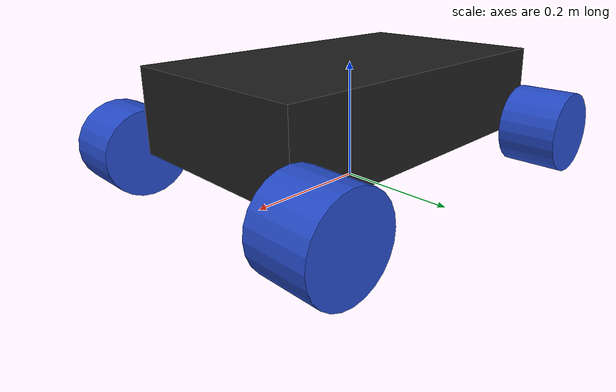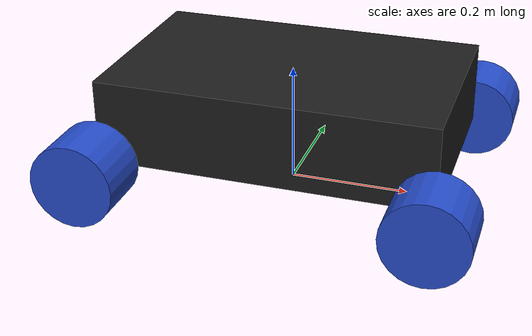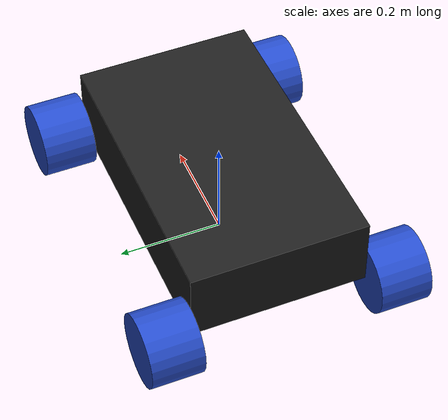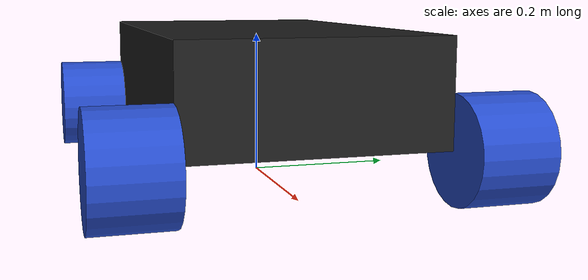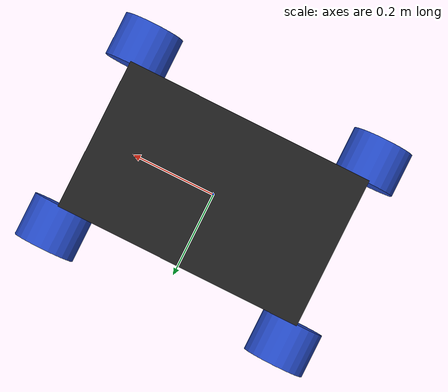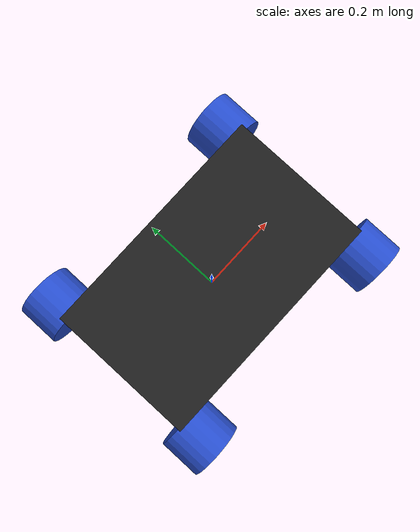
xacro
<?xml version="1.0" ?>
<robot name="track_creator" xmlns:xacro="http://www.ros.org/wiki/xacro">

<xacro:property name="cameraSize" value="0.05"/>
<xacro:property name="cameraMass" value="0.1"/>
<xacro:property name="PI" value="3.1415926535897931"/>

<xacro:property name="base_Size" value="0.1"/>

<xacro:include filename="$(find my_description)/urdf/my.gazebo" />
<xacro:include filename="$(find my_description)/urdf/materials.xacro" />

 <link name="camera_link">
     </link>

 <joint name="camera_joint" type="fixed">
    <axis xyz="0 0 0" />
    <origin xyz="0.3 0.0 0.25" rpy="0 0 0"/>
    <parent link="track_creator__base_link"/>
    <child link="camera_link"/>
  </joint>

<joint name="camera_optical_joint" type="fixed">
    <!-- these values have to be these values otherwise the gazebo camera image
        won't be aligned properly with the frame it is supposedly originating from -->
    <origin xyz="0 0 0" rpy="-1.5708 0 -1.5708"/>
    <parent link="camera_link"/>
    <child link="camera_link_optical"/>
  </joint>

  <link name="camera_link_optical">
  </link>

  <link name="imu_link">
      </link>
      <joint name="imu_joint" type="fixed">
    <axis xyz="0 0 0" />
    <origin xyz="0.3 0.0 0.25" rpy="0 0 0"/>
    <parent link="track_creator__base_link"/>
    <child link="imu_link"/>
  </joint>

  <joint name="track_creator__drum_joint1" type="continuous">
    <parent link="track_creator__base_link"/>
    <child link="track_creator__drum1"/>
    <origin rpy="1.57079  0       0" xyz="0.28     0.22     0.07099"/>
    <axis xyz="0  0 -1"/>
    <limit effort="0" lower="0" upper="0" velocity="0"/>
  </joint>

  <joint name="track_creator__drum_joint2" type="continuous">
    <parent link="track_creator__base_link"/>
    <child link="track_creator__drum2"/>
    <origin rpy="1.57079  0       0" xyz="0.28    -0.22     0.07099"/>
    <axis xyz="0  0 -1"/>
    <limit effort="0" lower="0" upper="0" velocity="0"/>
  </joint>

  <joint name="track_creator__drum_joint3" type="continuous">
    <parent link="track_creator__base_link"/>
    <child link="track_creator__drum3"/>
    <origin rpy="1.57079  0       0" xyz="-0.28     0.22     0.07099"/>
    <axis xyz="0  0 -1"/>
    <limit effort="0" lower="0" upper="0" velocity="0"/>
  </joint>

  <joint name="track_creator__drum_joint4" type="continuous">
    <parent link="track_creator__base_link"/>
    <child link="track_creator__drum4"/>
    <origin rpy="1.57079  0       0" xyz="-0.28    -0.22     0.07099"/>
    <axis xyz="0  0 -1"/>
    <limit effort="0" lower="0" upper="0" velocity="0"/>
  </joint>

  <link name="track_creator__base_link">
    <inertial>
      <mass value="13.14"/>
      <origin rpy="0  0  0" xyz="0  0  0"/>
      <inertia ixx="0" ixy="0" ixz="0" iyy="0" iyz="0" izz="0"/>
    </inertial>
    <collision name="track_creator__base_link_collision">
      <origin rpy="0  0  0" xyz="0    0    0.14"/>
      <geometry>
        <box size="0.56 0.34 0.14"/>
      </geometry>
    </collision>
    <visual name="track_creator__base_link_visual">
      <origin rpy="0  0  0" xyz="0    0    0.14"/>
      <geometry>
        <box size="0.56 0.34 0.14"/>
      </geometry>
    </visual>
  </link>

  <link name="track_creator__drum1">
    <inertial>
      <mass value="0.5"/>
      <origin rpy="0  0  0" xyz="0  0  0"/>
      <inertia ixx="0" ixy="0" ixz="0" iyy="0" iyz="0" izz="0"/>
    </inertial>
    <collision name="track_creator__drum1_collision">
      <origin rpy="0  0  0" xyz="0  0  0"/>
      <geometry>
        <cylinder length="0.1" radius="0.07"/>
      </geometry>
    </collision>
    <visual name="track_creator__drum1_visual">
      <origin rpy="0  0  0" xyz="0  0  0"/>
      <geometry>
        <cylinder length="0.1" radius="0.07"/>
      </geometry>
    </visual>
  </link>

  <link name="track_creator__drum2">
    <inertial>
      <mass value="0.5"/>
      <origin rpy="0  0  0" xyz="0  0  0"/>
      <inertia ixx="0" ixy="0" ixz="0" iyy="0" iyz="0" izz="0"/>
    </inertial>
    <collision name="track_creator__drum2_collision">
      <origin rpy="0  0  0" xyz="0  0  0"/>
      <geometry>
        <cylinder length="0.1" radius="0.07"/>
      </geometry>
    </collision>
    <visual name="track_creator__drum2_visual">
      <origin rpy="0  0  0" xyz="0  0  0"/>
      <geometry>
        <cylinder length="0.1" radius="0.07"/>
      </geometry>
    </visual>
  </link>

  <link name="track_creator__drum3">
    <inertial>
      <mass value="0.5"/>
      <origin rpy="0  0  0" xyz="0  0  0"/>
      <inertia ixx="0" ixy="0" ixz="0" iyy="0" iyz="0" izz="0"/>
    </inertial>
    <collision name="track_creator__drum3_collision">
      <origin rpy="0  0  0" xyz="0  0  0"/>
      <geometry>
        <cylinder length="0.1" radius="0.07"/>
      </geometry>
    </collision>
    <visual name="track_creator__drum3_visual">
      <origin rpy="0  0  0" xyz="0  0  0"/>
      <geometry>
        <cylinder length="0.1" radius="0.07"/>
      </geometry>
    </visual>
  </link>

  <link name="track_creator__drum4">
    <inertial>
      <mass value="0.5"/>
      <origin rpy="0  0  0" xyz="0  0  0"/>
      <inertia ixx="0" ixy="0" ixz="0" iyy="0" iyz="0" izz="0"/>
    </inertial>
    <collision name="track_creator__drum4_collision">
      <origin rpy="0  0  0" xyz="0  0  0"/>
      <geometry>
        <cylinder length="0.1" radius="0.07"/>
      </geometry>
    </collision>
    <visual name="track_creator__drum4_visual">
      <origin rpy="0  0  0" xyz="0  0  0"/>
      <geometry>
        <cylinder length="0.1" radius="0.07"/>
      </geometry>
    </visual>
  </link>

  </robot>
